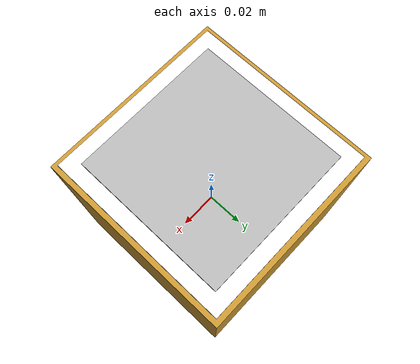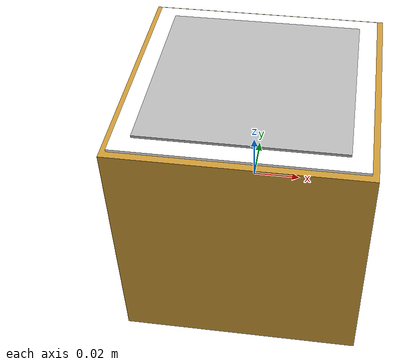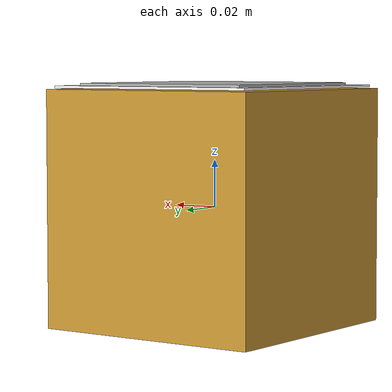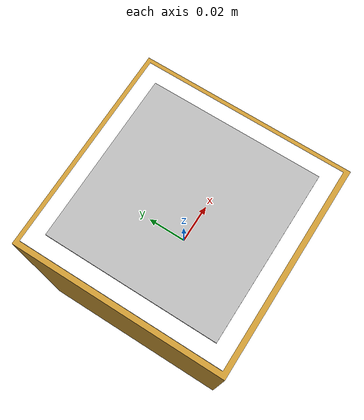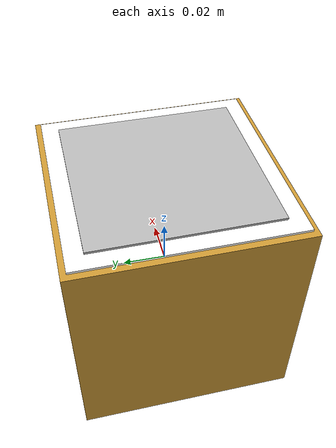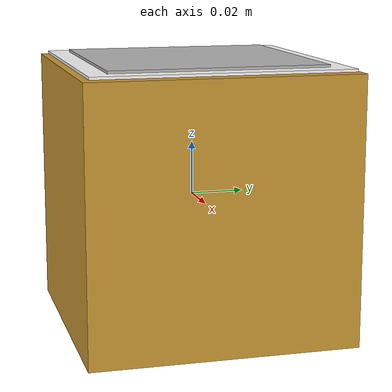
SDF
<?xml version="1.0"?>
<sdf version="1.6">
    <model name="box_with_aruco_0">
        <link name="link">
            <inertial>
                <mass>0.03</mass>
                <inertia>
                    <ixx>5e-5</ixx>
                    <iyy>5e-5</iyy>
                    <izz>5e-5</izz>
                    <ixy>0</ixy>
                    <ixz>0</ixz>
                    <iyz>0</iyz>
                </inertia>
            </inertial>

            <collision name="col">
                <geometry>
                    <box>
                        <size>0.1 0.1 0.1</size>
                    </box>
                </geometry>
            </collision>

            <visual name="vis_body">
                <geometry>
                    <box>
                        <size>0.1 0.1 0.1</size>
                    </box>
                </geometry>
                <material>
                    <ambient>0.8 0.6 0.2 1</ambient>
                    <diffuse>0.8 0.6 0.2 1</diffuse>
                </material>
            </visual>

            <visual name="vis_marker_bg">
                <pose>0 0 0.0510 0 0 0</pose>
                <geometry>
                    <box>
                        <size>0.095 0.095 0.001</size>
                    </box>
                </geometry>
                <material>
                    <ambient>1 1 1 1</ambient>
                    <diffuse>1 1 1 1</diffuse>
                </material>
            </visual>

            <visual name="vis_marker">
                <pose>0 0 0.0520 0 0 0</pose>
                <geometry>
                    <box>
                        <size>0.08 0.08 0.001</size>
                    </box>
                </geometry>
                <material>
                    <script>
                    <uri>model://box_with_aruco_0/materials/scripts</uri>
                    <uri>model://box_with_aruco_0/materials/textures</uri>
                    <name>Aruco/Marker0</name>
                    </script>
                </material>
            </visual>
        </link>
    </model>
</sdf>
